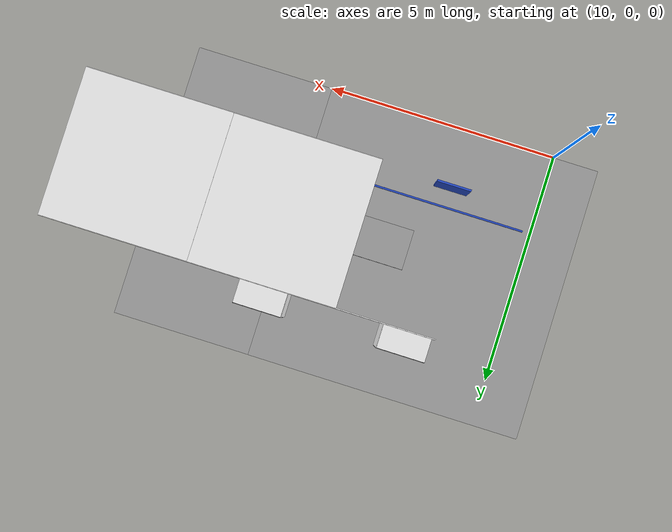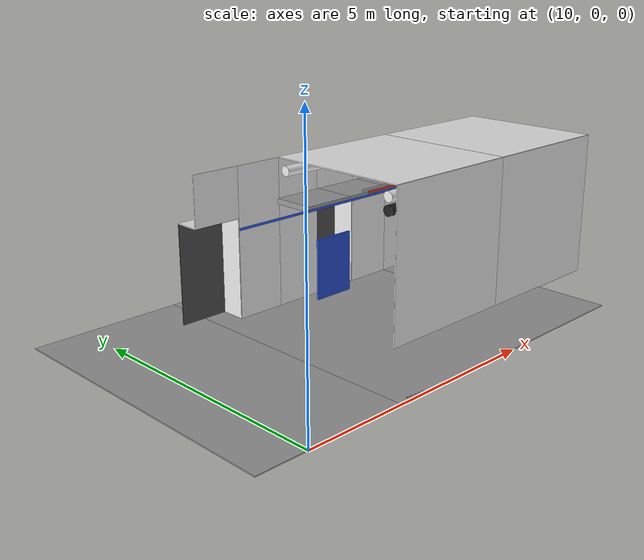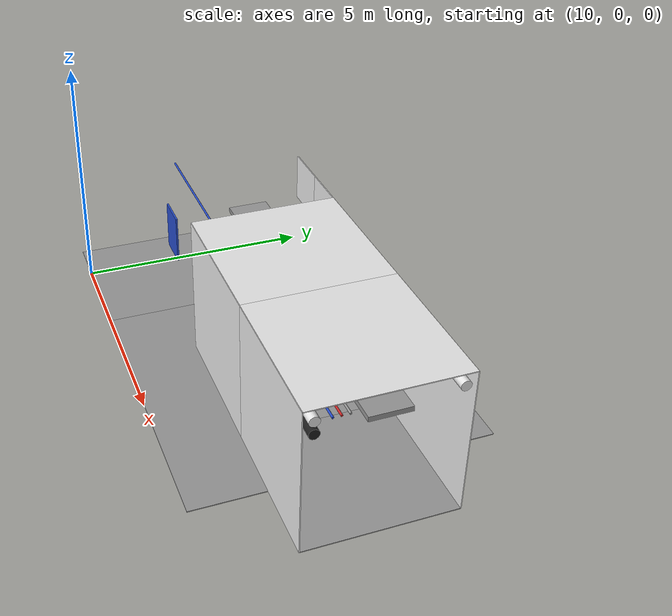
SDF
<sdf version="1.6">
 <world name="default">
  <model name="ceiling_1_4_1_2_1">
   <pose>13.0 3.0 2.55 0.0 0.0 -1.57</pose>
   <link name="link_1">
    <visual name="visual">
     <geometry><box><size>0.8 1 0.1</size></box></geometry>
     <material>
      <script><uri>file://media/materials/scripts/gazebo.material</uri><name>Gazebo/Grey</name></script>
     </material>
    </visual>
    <collision name="collision"><geometry><box><size>0.8 1 0.1</size></box></geometry></collision>
   </link>
   <static>1</static>
  </model>
  <model name="blue_pipe_right_4_1_0_1">
   <static>1</static>
   <pose>12.0 3.0 2.76 0.0 0.0 -1.57</pose>
   <link name="link_0">
    <visual name="visual">
     <pose>1 0 0 1.57 0 0</pose>
     <geometry><cylinder><radius>0.02</radius><length>3.0</length></cylinder></geometry>
     <material>
      <script><uri>file://media/materials/scripts/gazebo.material</uri><name>Gazebo/Blue</name></script>
     </material>
    </visual>
    <collision name="collision">
     <pose>1 0 0 1.57 0 0</pose>
     <geometry><cylinder><radius>0.02</radius><length>3.0</length></cylinder></geometry>
    </collision>
   </link>
  </model>
  <model name="panel_4_1_0_1">
   <static>1</static>
   <pose>12.0 1.5 1.95 0.0 0.0 -1.57</pose>
   <link name="link">
    <collision name="collision"><geometry><box><size>0.04 0.7 1</size></box></geometry></collision>
    <visual name="visual">
     <material>
      <script><name>Gazebo/Blue</name><uri>file://media/materials/scripts/gazebo.material</uri></script>
     </material>
     <geometry><box><size>0.04 0.7 1</size></box></geometry>
    </visual>
   </link>
  </model>
  <model name="wall_left_front_left_4_1_0_1">
   <static>1</static>
   <pose>13.0 4.5 1.5 0.0 0.0 0.0</pose>
   <link name="link">
    <collision name="collision"><geometry><box><size>1.0 0.02 3.0</size></box></geometry></collision>
    <visual name="visual">
     <material>
      <script><name>Gazebo/White</name><uri>file://media/materials/scripts/gazebo.material</uri></script>
     </material>
     <geometry><box><size>1.0 0.02 3.0</size></box></geometry>
    </visual>
   </link>
  </model>
  <model name="wall_left_front_up_4_1_0_1">
   <static>1</static>
   <pose>12.0 4.5 2.5 0.0 0.0 0.0</pose>
   <link name="link">
    <collision name="collision"><geometry><box><size>1.0 0.02 1.0</size></box></geometry></collision>
    <visual name="visual">
     <material>
      <script><name>Gazebo/White</name><uri>file://media/materials/scripts/gazebo.material</uri></script>
     </material>
     <geometry><box><size>1.0 0.02 1.0</size></box></geometry>
    </visual>
   </link>
  </model>
  <model name="wall_left_inside_back_4_1_0_1">
   <static>1</static>
   <pose>12.0 5.0 1.0 0.0 0.0 0.0</pose>
   <link name="link">
    <collision name="collision"><geometry><box><size>1 0.02 2</size></box></geometry></collision>
    <visual name="visual">
     <material>
      <script><name>Gazebo/DarkGrey</name><uri>file://media/materials/scripts/gazebo.material</uri></script>
     </material>
     <geometry><box><size>1 0.02 2</size></box></geometry>
    </visual>
   </link>
  </model>
  <model name="wall_left_inside_left_4_1_0_1">
   <static>1</static>
   <pose>12.5 4.75 1.0 0.0 0.0 -1.57</pose>
   <link name="link">
    <collision name="collision"><geometry><box><size>0.5 0.02 2</size></box></geometry></collision>
    <visual name="visual">
     <material>
      <script><name>Gazebo/White</name><uri>file://media/materials/scripts/gazebo.material</uri></script>
     </material>
     <geometry><box><size>0.5 0.02 2</size></box></geometry>
    </visual>
   </link>
  </model>
  <model name="wall_left_inside_top_4_1_0_1">
   <static>1</static>
   <pose>12.0 4.75 2.0 1.57 0.0 0.0</pose>
   <link name="link">
    <collision name="collision"><geometry><box><size>1 0.02 0.5</size></box></geometry></collision>
    <visual name="visual">
     <material>
      <script><name>Gazebo/White</name><uri>file://media/materials/scripts/gazebo.material</uri></script>
     </material>
     <geometry><box><size>1 0.02 0.5</size></box></geometry>
    </visual>
   </link>
  </model>
  <model name="wall_bottom_4_1_0_1">
   <static>1</static>
   <pose>12.0 3.0 0.0 0.0 0.0 -1.57</pose>
   <link name="link">
    <collision name="collision"><geometry><box><size>6.0 6.0 0.02</size></box></geometry></collision>
    <visual name="visual">
     <material>
      <script><name>Gazebo/Grey</name><uri>file://media/materials/scripts/gazebo.material</uri></script>
     </material>
     <geometry><box><size>6.0 6.0 0.02</size></box></geometry>
    </visual>
   </link>
  </model>
  <model name="wall_right_5_1_0_1">
   <static>1</static>
   <pose>15.0 1.5 1.5 0.0 0.0 0.0</pose>
   <link name="link">
    <collision name="collision"><geometry><box><size>3.0 0.02 3.0</size></box></geometry></collision>
    <visual name="visual">
     <material>
      <script><name>Gazebo/White</name><uri>file://media/materials/scripts/gazebo.material</uri></script>
     </material>
     <geometry><box><size>3.0 0.02 3.0</size></box></geometry>
    </visual>
   </link>
  </model>
  <model name="wall_top_5_1_0_1">
   <static>1</static>
   <pose>15.0 3.0 3.0 1.57 0.0 -1.57</pose>
   <link name="link">
    <collision name="collision"><geometry><box><size>3.0 0.02 3.0</size></box></geometry></collision>
    <visual name="visual">
     <material>
      <script><name>Gazebo/White</name><uri>file://media/materials/scripts/gazebo.material</uri></script>
     </material>
     <geometry><box><size>3.0 0.02 3.0</size></box></geometry>
    </visual>
   </link>
  </model>
  <model name="ceiling_1_5_1_0_1">
   <pose>15.0 3.0 2.55 0.0 0.0 -1.57</pose>
   <link name="link_1">
    <visual name="visual">
     <geometry><box><size>0.8 1 0.1</size></box></geometry>
     <material>
      <script><uri>file://media/materials/scripts/gazebo.material</uri><name>Gazebo/Grey</name></script>
     </material>
    </visual>
    <collision name="collision"><geometry><box><size>0.8 1 0.1</size></box></geometry></collision>
   </link>
   <static>1</static>
  </model>
  <model name="ceiling_1_5_1_1_1">
   <pose>14.0 3.0 2.55 0.0 0.0 -1.57</pose>
   <link name="link_1">
    <visual name="visual">
     <geometry><box><size>0.8 1 0.1</size></box></geometry>
     <material>
      <script><uri>file://media/materials/scripts/gazebo.material</uri><name>Gazebo/Grey</name></script>
     </material>
    </visual>
    <collision name="collision"><geometry><box><size>0.8 1 0.1</size></box></geometry></collision>
   </link>
   <static>1</static>
  </model>
  <model name="ceiling_1_5_1_2_1">
   <pose>16.0 3.0 2.55 0.0 0.0 -1.57</pose>
   <link name="link_1">
    <visual name="visual">
     <geometry><box><size>0.8 1 0.1</size></box></geometry>
     <material>
      <script><uri>file://media/materials/scripts/gazebo.material</uri><name>Gazebo/Grey</name></script>
     </material>
    </visual>
    <collision name="collision"><geometry><box><size>0.8 1 0.1</size></box></geometry></collision>
   </link>
   <static>1</static>
  </model>
  <model name="white_pipe_left_5_1_0_1">
   <static>1</static>
   <pose>15.0 3.0 2.76 0.0 0.0 -1.57</pose>
   <link name="link_0">
    <visual name="visual">
     <pose>-1.3 0 0 1.57 0 0</pose>
     <geometry><cylinder><radius>0.1</radius><length>3.0</length></cylinder></geometry>
     <material>
      <script><uri>file://media/materials/scripts/gazebo.material</uri><name>Gazebo/White</name></script>
     </material>
    </visual>
    <collision name="collision">
     <pose>-1.3 0 0 1.57 0 0</pose>
     <geometry><cylinder><radius>0.1</radius><length>3.0</length></cylinder></geometry>
    </collision>
   </link>
  </model>
  <model name="white_pipe_right_5_1_0_1">
   <static>1</static>
   <pose>15.0 3.0 2.76 0.0 0.0 -1.57</pose>
   <link name="link_0">
    <visual name="visual">
     <pose>1.3 0 0 1.57 0 0</pose>
     <geometry><cylinder><radius>0.1</radius><length>3.0</length></cylinder></geometry>
     <material>
      <script><uri>file://media/materials/scripts/gazebo.material</uri><name>Gazebo/White</name></script>
     </material>
    </visual>
    <collision name="collision">
     <pose>1.3 0 0 1.57 0 0</pose>
     <geometry><cylinder><radius>0.1</radius><length>3.0</length></cylinder></geometry>
    </collision>
   </link>
  </model>
  <model name="black_pipe_right_5_1_0_1">
   <static>1</static>
   <pose>15.0 3.0 2.76 0.0 0.0 -1.57</pose>
   <link name="link_0">
    <visual name="visual">
     <pose>1.3 0 -0.25 1.57 0 0</pose>
     <geometry><cylinder><radius>0.1</radius><length>3.0</length></cylinder></geometry>
     <material>
      <script><uri>file://media/materials/scripts/gazebo.material</uri><name>Gazebo/Black</name></script>
     </material>
    </visual>
    <collision name="collision">
     <pose>1.3 0 -0.25 1.57 0 0</pose>
     <geometry><cylinder><radius>0.1</radius><length>3.0</length></cylinder></geometry>
    </collision>
   </link>
  </model>
  <model name="grey_pipe_right_5_1_0_1">
   <static>1</static>
   <pose>15.0 3.0 2.76 0.0 0.0 -1.57</pose>
   <link name="link_0">
    <visual name="visual">
     <pose>0.7 0 0 1.57 0 0</pose>
     <geometry><cylinder><radius>0.02</radius><length>3.0</length></cylinder></geometry>
     <material>
      <script><uri>file://media/materials/scripts/gazebo.material</uri><name>Gazebo/Grey</name></script>
     </material>
    </visual>
    <collision name="collision">
     <pose>0.7 0 0 1.57 0 0</pose>
     <geometry><cylinder><radius>0.02</radius><length>3.0</length></cylinder></geometry>
    </collision>
   </link>
  </model>
  <model name="red_pipe_right_5_1_0_1">
   <static>1</static>
   <pose>15.0 3.0 2.76 0.0 0.0 -1.57</pose>
   <link name="link_0">
    <visual name="visual">
     <pose>0.85 0 0 1.57 0 0</pose>
     <geometry><cylinder><radius>0.02</radius><length>3.0</length></cylinder></geometry>
     <material>
      <script><uri>file://media/materials/scripts/gazebo.material</uri><name>Gazebo/Red</name></script>
     </material>
    </visual>
    <collision name="collision">
     <pose>0.85 0 0 1.57 0 0</pose>
     <geometry><cylinder><radius>0.02</radius><length>3.0</length></cylinder></geometry>
    </collision>
   </link>
  </model>
  <model name="blue_pipe_right_5_1_0_1">
   <static>1</static>
   <pose>15.0 3.0 2.76 0.0 0.0 -1.57</pose>
   <link name="link_0">
    <visual name="visual">
     <pose>1 0 0 1.57 0 0</pose>
     <geometry><cylinder><radius>0.02</radius><length>3.0</length></cylinder></geometry>
     <material>
      <script><uri>file://media/materials/scripts/gazebo.material</uri><name>Gazebo/Blue</name></script>
     </material>
    </visual>
    <collision name="collision">
     <pose>1 0 0 1.57 0 0</pose>
     <geometry><cylinder><radius>0.02</radius><length>3.0</length></cylinder></geometry>
    </collision>
   </link>
  </model>
  <model name="wall_left_front_left_5_1_0_1">
   <static>1</static>
   <pose>16.0 4.5 1.5 0.0 0.0 0.0</pose>
   <link name="link">
    <collision name="collision"><geometry><box><size>1.0 0.02 3.0</size></box></geometry></collision>
    <visual name="visual">
     <material>
      <script><name>Gazebo/White</name><uri>file://media/materials/scripts/gazebo.material</uri></script>
     </material>
     <geometry><box><size>1.0 0.02 3.0</size></box></geometry>
    </visual>
   </link>
  </model>
  <model name="wall_left_front_right_5_1_0_1">
   <static>1</static>
   <pose>14.0 4.5 1.5 0.0 0.0 0.0</pose>
   <link name="link">
    <collision name="collision"><geometry><box><size>1.0 0.02 3.0</size></box></geometry></collision>
    <visual name="visual">
     <material>
      <script><name>Gazebo/White</name><uri>file://media/materials/scripts/gazebo.material</uri></script>
     </material>
     <geometry><box><size>1.0 0.02 3.0</size></box></geometry>
    </visual>
   </link>
  </model>
  <model name="wall_left_front_up_5_1_0_1">
   <static>1</static>
   <pose>15.0 4.5 2.5 0.0 0.0 0.0</pose>
   <link name="link">
    <collision name="collision"><geometry><box><size>1.0 0.02 1.0</size></box></geometry></collision>
    <visual name="visual">
     <material>
      <script><name>Gazebo/White</name><uri>file://media/materials/scripts/gazebo.material</uri></script>
     </material>
     <geometry><box><size>1.0 0.02 1.0</size></box></geometry>
    </visual>
   </link>
  </model>
  <model name="wall_left_inside_back_5_1_0_1">
   <static>1</static>
   <pose>15.0 5.0 1.0 0.0 0.0 0.0</pose>
   <link name="link">
    <collision name="collision"><geometry><box><size>1 0.02 2</size></box></geometry></collision>
    <visual name="visual">
     <material>
      <script><name>Gazebo/DarkGrey</name><uri>file://media/materials/scripts/gazebo.material</uri></script>
     </material>
     <geometry><box><size>1 0.02 2</size></box></geometry>
    </visual>
   </link>
  </model>
  <model name="wall_left_inside_left_5_1_0_1">
   <static>1</static>
   <pose>15.5 4.75 1.0 0.0 0.0 -1.57</pose>
   <link name="link">
    <collision name="collision"><geometry><box><size>0.5 0.02 2</size></box></geometry></collision>
    <visual name="visual">
     <material>
      <script><name>Gazebo/White</name><uri>file://media/materials/scripts/gazebo.material</uri></script>
     </material>
     <geometry><box><size>0.5 0.02 2</size></box></geometry>
    </visual>
   </link>
  </model>
  <model name="wall_left_inside_right_5_1_0_1">
   <static>1</static>
   <pose>14.5 4.75 1.0 0.0 0.0 -1.57</pose>
   <link name="link">
    <collision name="collision"><geometry><box><size>0.5 0.02 2</size></box></geometry></collision>
    <visual name="visual">
     <material>
      <script><name>Gazebo/White</name><uri>file://media/materials/scripts/gazebo.material</uri></script>
     </material>
     <geometry><box><size>0.5 0.02 2</size></box></geometry>
    </visual>
   </link>
  </model>
  <model name="wall_left_inside_top_5_1_0_1">
   <static>1</static>
   <pose>15.0 4.75 2.0 1.57 0.0 0.0</pose>
   <link name="link">
    <collision name="collision"><geometry><box><size>1 0.02 0.5</size></box></geometry></collision>
    <visual name="visual">
     <material>
      <script><name>Gazebo/White</name><uri>file://media/materials/scripts/gazebo.material</uri></script>
     </material>
     <geometry><box><size>1 0.02 0.5</size></box></geometry>
    </visual>
   </link>
  </model>
  <model name="wall_bottom_5_1_0_1">
   <static>1</static>
   <pose>15.0 3.0 0.0 0.0 0.0 -1.57</pose>
   <link name="link">
    <collision name="collision"><geometry><box><size>6.0 6.0 0.02</size></box></geometry></collision>
    <visual name="visual">
     <material>
      <script><name>Gazebo/Grey</name><uri>file://media/materials/scripts/gazebo.material</uri></script>
     </material>
     <geometry><box><size>6.0 6.0 0.02</size></box></geometry>
    </visual>
   </link>
  </model>
  <model name="wall_right_6_1_0_4">
   <static>1</static>
   <pose>18.0 1.5 1.5 0.0 0.0 0.0</pose>
   <link name="link">
    <collision name="collision"><geometry><box><size>3.0 0.02 3.0</size></box></geometry></collision>
    <visual name="visual">
     <material>
      <script><name>Gazebo/White</name><uri>file://media/materials/scripts/gazebo.material</uri></script>
     </material>
     <geometry><box><size>3.0 0.02 3.0</size></box></geometry>
    </visual>
   </link>
  </model>
  <model name="wall_left_6_1_0_4">
   <static>1</static>
   <pose>18.0 4.5 1.5 0.0 0.0 0.0</pose>
   <link name="link">
    <collision name="collision"><geometry><box><size>3.0 0.02 3.0</size></box></geometry></collision>
    <visual name="visual">
     <material>
      <script><name>Gazebo/White</name><uri>file://media/materials/scripts/gazebo.material</uri></script>
     </material>
     <geometry><box><size>3.0 0.02 3.0</size></box></geometry>
    </visual>
   </link>
  </model>
  <model name="wall_top_6_1_0_4">
   <static>1</static>
   <pose>18.0 3.0 3.0 1.57 0.0 -1.57</pose>
   <link name="link">
    <collision name="collision"><geometry><box><size>3.0 0.02 3.0</size></box></geometry></collision>
    <visual name="visual">
     <material>
      <script><name>Gazebo/White</name><uri>file://media/materials/scripts/gazebo.material</uri></script>
     </material>
     <geometry><box><size>3.0 0.02 3.0</size></box></geometry>
    </visual>
   </link>
  </model>
  <model name="ceiling_1_6_1_0_4">
   <pose>18.0 3.0 2.55 0.0 0.0 -1.57</pose>
   <link name="link_1">
    <visual name="visual">
     <geometry><box><size>0.8 1 0.1</size></box></geometry>
     <material>
      <script><uri>file://media/materials/scripts/gazebo.material</uri><name>Gazebo/Grey</name></script>
     </material>
    </visual>
    <collision name="collision"><geometry><box><size>0.8 1 0.1</size></box></geometry></collision>
   </link>
   <static>1</static>
  </model>
  <model name="ceiling_1_6_1_1_4">
   <pose>17.0 3.0 2.55 0.0 0.0 -1.57</pose>
   <link name="link_1">
    <visual name="visual">
     <geometry><box><size>0.8 1 0.1</size></box></geometry>
     <material>
      <script><uri>file://media/materials/scripts/gazebo.material</uri><name>Gazebo/Grey</name></script>
     </material>
    </visual>
    <collision name="collision"><geometry><box><size>0.8 1 0.1</size></box></geometry></collision>
   </link>
   <static>1</static>
  </model>
  <model name="ceiling_1_6_1_2_4">
   <pose>19.0 3.0 2.55 0.0 0.0 -1.57</pose>
   <link name="link_1">
    <visual name="visual">
     <geometry><box><size>0.8 1 0.1</size></box></geometry>
     <material>
      <script><uri>file://media/materials/scripts/gazebo.material</uri><name>Gazebo/Grey</name></script>
     </material>
    </visual>
    <collision name="collision"><geometry><box><size>0.8 1 0.1</size></box></geometry></collision>
   </link>
   <static>1</static>
  </model>
  <model name="white_pipe_left_6_1_0_4">
   <static>1</static>
   <pose>18.0 3.0 2.76 0.0 0.0 -1.57</pose>
   <link name="link_0">
    <visual name="visual">
     <pose>-1.3 0 0 1.57 0 0</pose>
     <geometry><cylinder><radius>0.1</radius><length>3.0</length></cylinder></geometry>
     <material>
      <script><uri>file://media/materials/scripts/gazebo.material</uri><name>Gazebo/White</name></script>
     </material>
    </visual>
    <collision name="collision">
     <pose>-1.3 0 0 1.57 0 0</pose>
     <geometry><cylinder><radius>0.1</radius><length>3.0</length></cylinder></geometry>
    </collision>
   </link>
  </model>
  <model name="white_pipe_right_6_1_0_4">
   <static>1</static>
   <pose>18.0 3.0 2.76 0.0 0.0 -1.57</pose>
   <link name="link_0">
    <visual name="visual">
     <pose>1.3 0 0 1.57 0 0</pose>
     <geometry><cylinder><radius>0.1</radius><length>3.0</length></cylinder></geometry>
     <material>
      <script><uri>file://media/materials/scripts/gazebo.material</uri><name>Gazebo/White</name></script>
     </material>
    </visual>
    <collision name="collision">
     <pose>1.3 0 0 1.57 0 0</pose>
     <geometry><cylinder><radius>0.1</radius><length>3.0</length></cylinder></geometry>
    </collision>
   </link>
  </model>
  <model name="black_pipe_right_6_1_0_4">
   <static>1</static>
   <pose>18.0 3.0 2.76 0.0 0.0 -1.57</pose>
   <link name="link_0">
    <visual name="visual">
     <pose>1.3 0 -0.25 1.57 0 0</pose>
     <geometry><cylinder><radius>0.1</radius><length>3.0</length></cylinder></geometry>
     <material>
      <script><uri>file://media/materials/scripts/gazebo.material</uri><name>Gazebo/Black</name></script>
     </material>
    </visual>
    <collision name="collision">
     <pose>1.3 0 -0.25 1.57 0 0</pose>
     <geometry><cylinder><radius>0.1</radius><length>3.0</length></cylinder></geometry>
    </collision>
   </link>
  </model>
  <model name="grey_pipe_right_6_1_0_4">
   <static>1</static>
   <pose>18.0 3.0 2.76 0.0 0.0 -1.57</pose>
   <link name="link_0">
    <visual name="visual">
     <pose>0.7 0 0 1.57 0 0</pose>
     <geometry><cylinder><radius>0.02</radius><length>3.0</length></cylinder></geometry>
     <material>
      <script><uri>file://media/materials/scripts/gazebo.material</uri><name>Gazebo/Grey</name></script>
     </material>
    </visual>
    <collision name="collision">
     <pose>0.7 0 0 1.57 0 0</pose>
     <geometry><cylinder><radius>0.02</radius><length>3.0</length></cylinder></geometry>
    </collision>
   </link>
  </model>
  <model name="red_pipe_right_6_1_0_4">
   <static>1</static>
   <pose>18.0 3.0 2.76 0.0 0.0 -1.57</pose>
   <link name="link_0">
    <visual name="visual">
     <pose>0.85 0 0 1.57 0 0</pose>
     <geometry><cylinder><radius>0.02</radius><length>3.0</length></cylinder></geometry>
     <material>
      <script><uri>file://media/materials/scripts/gazebo.material</uri><name>Gazebo/Red</name></script>
     </material>
    </visual>
    <collision name="collision">
     <pose>0.85 0 0 1.57 0 0</pose>
     <geometry><cylinder><radius>0.02</radius><length>3.0</length></cylinder></geometry>
    </collision>
   </link>
  </model>
  <model name="blue_pipe_right_6_1_0_4">
   <static>1</static>
   <pose>18.0 3.0 2.76 0.0 0.0 -1.57</pose>
   <link name="link_0">
    <visual name="visual">
     <pose>1 0 0 1.57 0 0</pose>
     <geometry><cylinder><radius>0.02</radius><length>3.0</length></cylinder></geometry>
     <material>
      <script><uri>file://media/materials/scripts/gazebo.material</uri><name>Gazebo/Blue</name></script>
     </material>
    </visual>
    <collision name="collision">
     <pose>1 0 0 1.57 0 0</pose>
     <geometry><cylinder><radius>0.02</radius><length>3.0</length></cylinder></geometry>
    </collision>
   </link>
  </model>
  <model name="wall_bottom_6_1_0_4">
   <static>1</static>
   <pose>18.0 3.0 0.0 0.0 0.0 -1.57</pose>
   <link name="link">
    <collision name="collision"><geometry><box><size>3.0 3.0 0.02</size></box></geometry></collision>
    <visual name="visual">
     <material>
      <script><name>Gazebo/Grey</name><uri>file://media/materials/scripts/gazebo.material</uri></script>
     </material>
     <geometry><box><size>3.0 3.0 0.02</size></box></geometry>
    </visual>
   </link>
  </model>
 </world>
</sdf>
